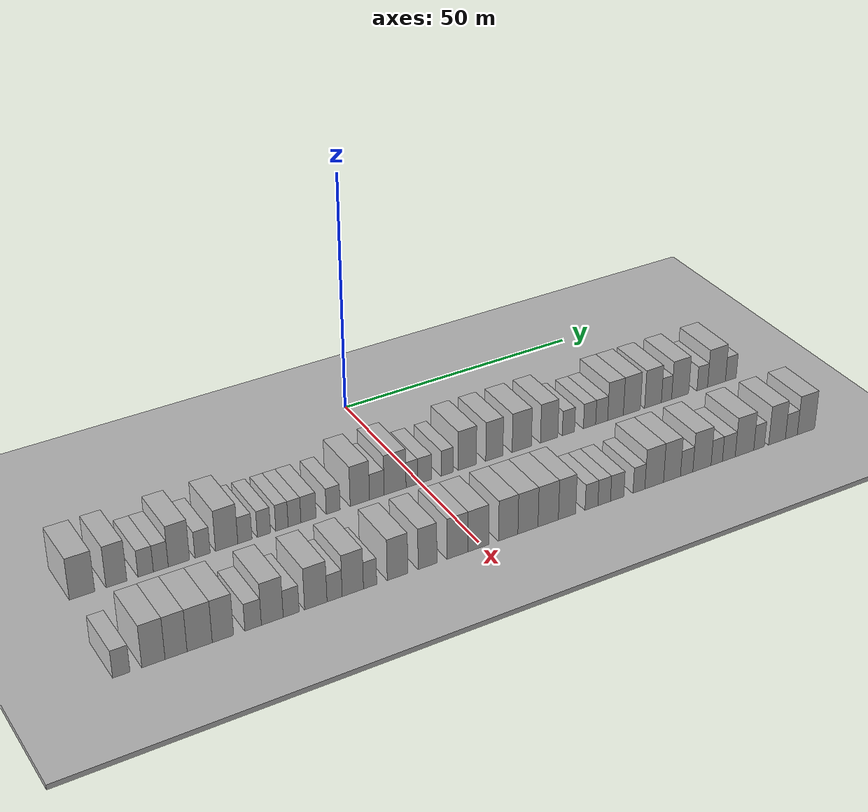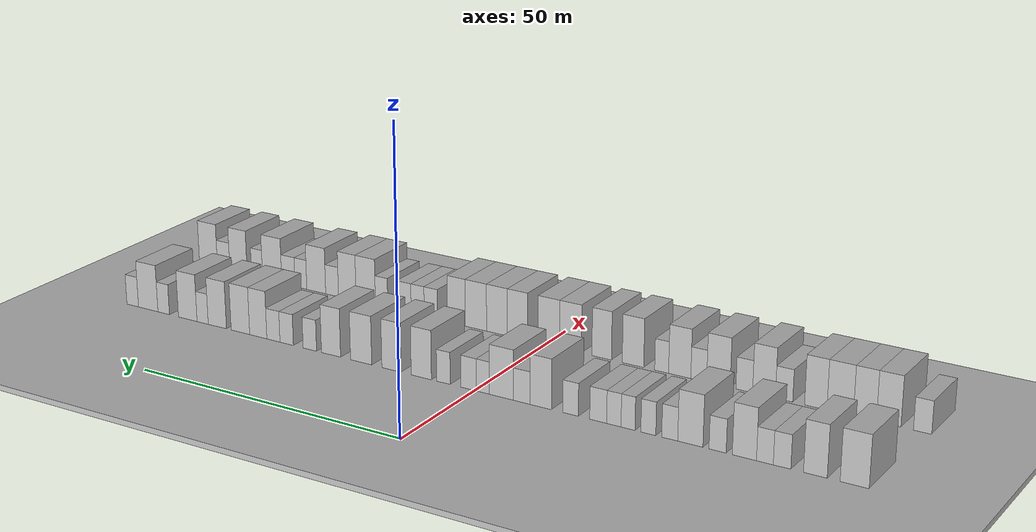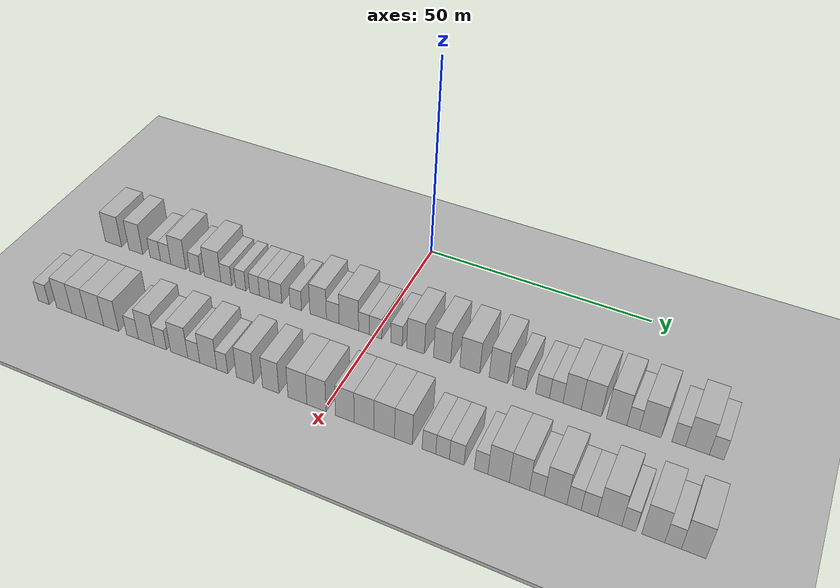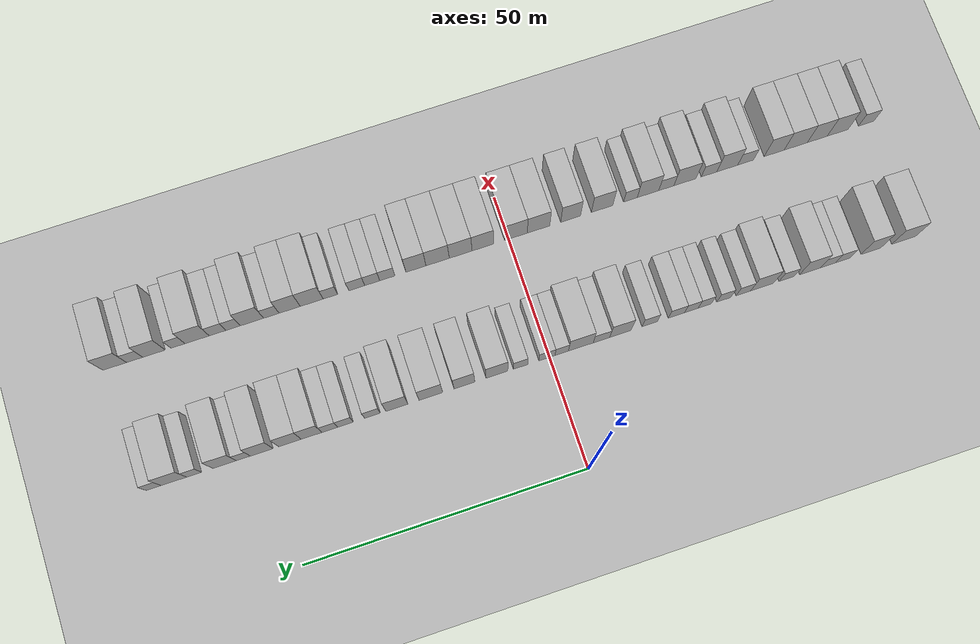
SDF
<sdf version="1.6">
 <world name="default">
  <include><name>ground_plane_1</name><uri>model://HANNAS_ground_plane</uri></include>
  <include>
   <name>ground_plane_2</name>
   <uri>model://HANNAS_ground_plane</uri>
   <pose>100 0 0  0 0 0</pose>
  </include>
  <model name="building_37">
   <static>1</static>
   <pose>25.0000 -65.0238 0 0.000000 0.000000 0.000000</pose>
   <link name="link">
    <pose>0 0 4.50 0 0 0</pose>
    <collision name="collision"><geometry><box><size>10.0000 4.4801 9.0000</size></box></geometry></collision>
    <visual name="visual">
     <cast_shadows>0</cast_shadows>
     <geometry><box><size>10.0000 4.4801 9.0000</size></box></geometry>
     <material>
      <script>
       <uri>model://HANNAS_wall/materials/scripts</uri>
       <uri>model://HANNAS_wall/materials/textures</uri>
       <name>vrc/HANNAS_wall</name>
      </script>
     </material>
    </visual>
   </link>
  </model>
  <model name="building_38">
   <static>1</static>
   <pose>25.0000 -58.9223 0 0.000000 0.000000 0.000000</pose>
   <link name="link">
    <pose>0 0 4.50 0 0 0</pose>
    <collision name="collision"><geometry><box><size>10.0000 3.7229 9.0000</size></box></geometry></collision>
    <visual name="visual">
     <cast_shadows>0</cast_shadows>
     <geometry><box><size>10.0000 3.7229 9.0000</size></box></geometry>
     <material>
      <script>
       <uri>model://HANNAS_wall/materials/scripts</uri>
       <uri>model://HANNAS_wall/materials/textures</uri>
       <name>vrc/HANNAS_wall</name>
      </script>
     </material>
    </visual>
   </link>
  </model>
  <model name="building_39">
   <static>1</static>
   <pose>25.0000 -53.6632 0 0.000000 0.000000 0.000000</pose>
   <link name="link">
    <pose>0 0 3.00 0 0 0</pose>
    <collision name="collision"><geometry><box><size>10.0000 2.7953 6.0000</size></box></geometry></collision>
    <visual name="visual">
     <cast_shadows>0</cast_shadows>
     <geometry><box><size>10.0000 2.7953 6.0000</size></box></geometry>
     <material>
      <script>
       <uri>model://HANNAS_wall/materials/scripts</uri>
       <uri>model://HANNAS_wall/materials/textures</uri>
       <name>vrc/HANNAS_wall</name>
      </script>
     </material>
    </visual>
   </link>
  </model>
  <model name="building_40">
   <static>1</static>
   <pose>25.0000 -50.9100 0 0.000000 0.000000 0.000000</pose>
   <link name="link">
    <pose>0 0 3.00 0 0 0</pose>
    <collision name="collision"><geometry><box><size>10.0000 2.7112 6.0000</size></box></geometry></collision>
    <visual name="visual">
     <cast_shadows>0</cast_shadows>
     <geometry><box><size>10.0000 2.7112 6.0000</size></box></geometry>
     <material>
      <script>
       <uri>model://HANNAS_wall/materials/scripts</uri>
       <uri>model://HANNAS_wall/materials/textures</uri>
       <name>vrc/HANNAS_wall</name>
      </script>
     </material>
    </visual>
   </link>
  </model>
  <model name="building_41">
   <static>1</static>
   <pose>25.0000 -47.5943 0 0.000000 0.000000 0.000000</pose>
   <link name="link">
    <pose>0 0 4.50 0 0 0</pose>
    <collision name="collision"><geometry><box><size>10.0000 3.9201 9.0000</size></box></geometry></collision>
    <visual name="visual">
     <cast_shadows>0</cast_shadows>
     <geometry><box><size>10.0000 3.9201 9.0000</size></box></geometry>
     <material>
      <script>
       <uri>model://HANNAS_wall/materials/scripts</uri>
       <uri>model://HANNAS_wall/materials/textures</uri>
       <name>vrc/HANNAS_wall</name>
      </script>
     </material>
    </visual>
   </link>
  </model>
  <model name="building_42">
   <static>1</static>
   <pose>25.0000 -43.2173 0 0.000000 0.000000 0.000000</pose>
   <link name="link">
    <pose>0 0 3.00 0 0 0</pose>
    <collision name="collision"><geometry><box><size>10.0000 2.8340 6.0000</size></box></geometry></collision>
    <visual name="visual">
     <cast_shadows>0</cast_shadows>
     <geometry><box><size>10.0000 2.8340 6.0000</size></box></geometry>
     <material>
      <script>
       <uri>model://HANNAS_wall/materials/scripts</uri>
       <uri>model://HANNAS_wall/materials/textures</uri>
       <name>vrc/HANNAS_wall</name>
      </script>
     </material>
    </visual>
   </link>
  </model>
  <model name="building_43">
   <static>1</static>
   <pose>25.0000 -38.6932 0 0.000000 0.000000 0.000000</pose>
   <link name="link">
    <pose>0 0 4.50 0 0 0</pose>
    <collision name="collision"><geometry><box><size>10.0000 4.2141 9.0000</size></box></geometry></collision>
    <visual name="visual">
     <cast_shadows>0</cast_shadows>
     <geometry><box><size>10.0000 4.2141 9.0000</size></box></geometry>
     <material>
      <script>
       <uri>model://HANNAS_wall/materials/scripts</uri>
       <uri>model://HANNAS_wall/materials/textures</uri>
       <name>vrc/HANNAS_wall</name>
      </script>
     </material>
    </visual>
   </link>
  </model>
  <model name="building_44">
   <static>1</static>
   <pose>25.0000 -35.2384 0 0.000000 0.000000 0.000000</pose>
   <link name="link">
    <pose>0 0 3.00 0 0 0</pose>
    <collision name="collision"><geometry><box><size>10.0000 2.6955 6.0000</size></box></geometry></collision>
    <visual name="visual">
     <cast_shadows>0</cast_shadows>
     <geometry><box><size>10.0000 2.6955 6.0000</size></box></geometry>
     <material>
      <script>
       <uri>model://HANNAS_wall/materials/scripts</uri>
       <uri>model://HANNAS_wall/materials/textures</uri>
       <name>vrc/HANNAS_wall</name>
      </script>
     </material>
    </visual>
   </link>
  </model>
  <model name="building_45">
   <static>1</static>
   <pose>25.0000 -31.6136 0 0.000000 0.000000 0.000000</pose>
   <link name="link">
    <pose>0 0 3.00 0 0 0</pose>
    <collision name="collision"><geometry><box><size>10.0000 2.5543 6.0000</size></box></geometry></collision>
    <visual name="visual">
     <cast_shadows>0</cast_shadows>
     <geometry><box><size>10.0000 2.5543 6.0000</size></box></geometry>
     <material>
      <script>
       <uri>model://HANNAS_wall/materials/scripts</uri>
       <uri>model://HANNAS_wall/materials/textures</uri>
       <name>vrc/HANNAS_wall</name>
      </script>
     </material>
    </visual>
   </link>
  </model>
  <model name="building_46">
   <static>1</static>
   <pose>25.0000 -28.1310 0 0.000000 0.000000 0.000000</pose>
   <link name="link">
    <pose>0 0 3.00 0 0 0</pose>
    <collision name="collision"><geometry><box><size>10.0000 2.4108 6.0000</size></box></geometry></collision>
    <visual name="visual">
     <cast_shadows>0</cast_shadows>
     <geometry><box><size>10.0000 2.4108 6.0000</size></box></geometry>
     <material>
      <script>
       <uri>model://HANNAS_wall/materials/scripts</uri>
       <uri>model://HANNAS_wall/materials/textures</uri>
       <name>vrc/HANNAS_wall</name>
      </script>
     </material>
    </visual>
   </link>
  </model>
  <model name="building_47">
   <static>1</static>
   <pose>25.0000 -25.6795 0 0.000000 0.000000 0.000000</pose>
   <link name="link">
    <pose>0 0 3.00 0 0 0</pose>
    <collision name="collision"><geometry><box><size>10.0000 2.4922 6.0000</size></box></geometry></collision>
    <visual name="visual">
     <cast_shadows>0</cast_shadows>
     <geometry><box><size>10.0000 2.4922 6.0000</size></box></geometry>
     <material>
      <script>
       <uri>model://HANNAS_wall/materials/scripts</uri>
       <uri>model://HANNAS_wall/materials/textures</uri>
       <name>vrc/HANNAS_wall</name>
      </script>
     </material>
    </visual>
   </link>
  </model>
  <model name="building_48">
   <static>1</static>
   <pose>25.0000 -22.9481 0 0.000000 0.000000 0.000000</pose>
   <link name="link">
    <pose>0 0 3.00 0 0 0</pose>
    <collision name="collision"><geometry><box><size>10.0000 2.9707 6.0000</size></box></geometry></collision>
    <visual name="visual">
     <cast_shadows>0</cast_shadows>
     <geometry><box><size>10.0000 2.9707 6.0000</size></box></geometry>
     <material>
      <script>
       <uri>model://HANNAS_wall/materials/scripts</uri>
       <uri>model://HANNAS_wall/materials/textures</uri>
       <name>vrc/HANNAS_wall</name>
      </script>
     </material>
    </visual>
   </link>
  </model>
  <model name="building_49">
   <static>1</static>
   <pose>25.0000 -18.0751 0 0.000000 0.000000 0.000000</pose>
   <link name="link">
    <pose>0 0 3.00 0 0 0</pose>
    <collision name="collision"><geometry><box><size>10.0000 2.7752 6.0000</size></box></geometry></collision>
    <visual name="visual">
     <cast_shadows>0</cast_shadows>
     <geometry><box><size>10.0000 2.7752 6.0000</size></box></geometry>
     <material>
      <script>
       <uri>model://HANNAS_wall/materials/scripts</uri>
       <uri>model://HANNAS_wall/materials/textures</uri>
       <name>vrc/HANNAS_wall</name>
      </script>
     </material>
    </visual>
   </link>
  </model>
  <model name="building_50">
   <static>1</static>
   <pose>25.0000 -12.7385 0 0.000000 0.000000 0.000000</pose>
   <link name="link">
    <pose>0 0 4.50 0 0 0</pose>
    <collision name="collision"><geometry><box><size>10.0000 3.8981 9.0000</size></box></geometry></collision>
    <visual name="visual">
     <cast_shadows>0</cast_shadows>
     <geometry><box><size>10.0000 3.8981 9.0000</size></box></geometry>
     <material>
      <script>
       <uri>model://HANNAS_wall/materials/scripts</uri>
       <uri>model://HANNAS_wall/materials/textures</uri>
       <name>vrc/HANNAS_wall</name>
      </script>
     </material>
    </visual>
   </link>
  </model>
  <model name="building_51">
   <static>1</static>
   <pose>25.0000 -9.3016 0 0.000000 0.000000 0.000000</pose>
   <link name="link">
    <pose>0 0 3.00 0 0 0</pose>
    <collision name="collision"><geometry><box><size>10.0000 2.9758 6.0000</size></box></geometry></collision>
    <visual name="visual">
     <cast_shadows>0</cast_shadows>
     <geometry><box><size>10.0000 2.9758 6.0000</size></box></geometry>
     <material>
      <script>
       <uri>model://HANNAS_wall/materials/scripts</uri>
       <uri>model://HANNAS_wall/materials/textures</uri>
       <name>vrc/HANNAS_wall</name>
      </script>
     </material>
    </visual>
   </link>
  </model>
  <model name="building_52">
   <static>1</static>
   <pose>25.0000 -5.5700 0 0.000000 0.000000 0.000000</pose>
   <link name="link">
    <pose>0 0 4.50 0 0 0</pose>
    <collision name="collision"><geometry><box><size>10.0000 4.4874 9.0000</size></box></geometry></collision>
    <visual name="visual">
     <cast_shadows>0</cast_shadows>
     <geometry><box><size>10.0000 4.4874 9.0000</size></box></geometry>
     <material>
      <script>
       <uri>model://HANNAS_wall/materials/scripts</uri>
       <uri>model://HANNAS_wall/materials/textures</uri>
       <name>vrc/HANNAS_wall</name>
      </script>
     </material>
    </visual>
   </link>
  </model>
  <model name="building_53">
   <static>1</static>
   <pose>25.0000 -2.1167 0 0.000000 0.000000 0.000000</pose>
   <link name="link">
    <pose>0 0 3.00 0 0 0</pose>
    <collision name="collision"><geometry><box><size>10.0000 2.4191 6.0000</size></box></geometry></collision>
    <visual name="visual">
     <cast_shadows>0</cast_shadows>
     <geometry><box><size>10.0000 2.4191 6.0000</size></box></geometry>
     <material>
      <script>
       <uri>model://HANNAS_wall/materials/scripts</uri>
       <uri>model://HANNAS_wall/materials/textures</uri>
       <name>vrc/HANNAS_wall</name>
      </script>
     </material>
    </visual>
   </link>
  </model>
  <model name="building_54">
   <static>1</static>
   <pose>25.0000 0.5405 0 0.000000 0.000000 0.000000</pose>
   <link name="link">
    <pose>0 0 3.00 0 0 0</pose>
    <collision name="collision"><geometry><box><size>10.0000 2.8954 6.0000</size></box></geometry></collision>
    <visual name="visual">
     <cast_shadows>0</cast_shadows>
     <geometry><box><size>10.0000 2.8954 6.0000</size></box></geometry>
     <material>
      <script>
       <uri>model://HANNAS_wall/materials/scripts</uri>
       <uri>model://HANNAS_wall/materials/textures</uri>
       <name>vrc/HANNAS_wall</name>
      </script>
     </material>
    </visual>
   </link>
  </model>
  <model name="building_55">
   <static>1</static>
   <pose>25.0000 5.2751 0 0.000000 0.000000 0.000000</pose>
   <link name="link">
    <pose>0 0 3.00 0 0 0</pose>
    <collision name="collision"><geometry><box><size>10.0000 2.5737 6.0000</size></box></geometry></collision>
    <visual name="visual">
     <cast_shadows>0</cast_shadows>
     <geometry><box><size>10.0000 2.5737 6.0000</size></box></geometry>
     <material>
      <script>
       <uri>model://HANNAS_wall/materials/scripts</uri>
       <uri>model://HANNAS_wall/materials/textures</uri>
       <name>vrc/HANNAS_wall</name>
      </script>
     </material>
    </visual>
   </link>
  </model>
  <model name="building_56">
   <static>1</static>
   <pose>25.0000 9.5087 0 0.000000 0.000000 0.000000</pose>
   <link name="link">
    <pose>0 0 4.50 0 0 0</pose>
    <collision name="collision"><geometry><box><size>10.0000 3.8934 9.0000</size></box></geometry></collision>
    <visual name="visual">
     <cast_shadows>0</cast_shadows>
     <geometry><box><size>10.0000 3.8934 9.0000</size></box></geometry>
     <material>
      <script>
       <uri>model://HANNAS_wall/materials/scripts</uri>
       <uri>model://HANNAS_wall/materials/textures</uri>
       <name>vrc/HANNAS_wall</name>
      </script>
     </material>
    </visual>
   </link>
  </model>
  <model name="building_57">
   <static>1</static>
   <pose>25.0000 15.3121 0 0.000000 0.000000 0.000000</pose>
   <link name="link">
    <pose>0 0 4.50 0 0 0</pose>
    <collision name="collision"><geometry><box><size>10.0000 3.7135 9.0000</size></box></geometry></collision>
    <visual name="visual">
     <cast_shadows>0</cast_shadows>
     <geometry><box><size>10.0000 3.7135 9.0000</size></box></geometry>
     <material>
      <script>
       <uri>model://HANNAS_wall/materials/scripts</uri>
       <uri>model://HANNAS_wall/materials/textures</uri>
       <name>vrc/HANNAS_wall</name>
      </script>
     </material>
    </visual>
   </link>
  </model>
  <model name="building_58">
   <static>1</static>
   <pose>25.0000 21.2771 0 0.000000 0.000000 0.000000</pose>
   <link name="link">
    <pose>0 0 4.50 0 0 0</pose>
    <collision name="collision"><geometry><box><size>10.0000 4.2165 9.0000</size></box></geometry></collision>
    <visual name="visual">
     <cast_shadows>0</cast_shadows>
     <geometry><box><size>10.0000 4.2165 9.0000</size></box></geometry>
     <material>
      <script>
       <uri>model://HANNAS_wall/materials/scripts</uri>
       <uri>model://HANNAS_wall/materials/textures</uri>
       <name>vrc/HANNAS_wall</name>
      </script>
     </material>
    </visual>
   </link>
  </model>
  <model name="building_59">
   <static>1</static>
   <pose>25.0000 27.3191 0 0.000000 0.000000 0.000000</pose>
   <link name="link">
    <pose>0 0 4.50 0 0 0</pose>
    <collision name="collision"><geometry><box><size>10.0000 3.8674 9.0000</size></box></geometry></collision>
    <visual name="visual">
     <cast_shadows>0</cast_shadows>
     <geometry><box><size>10.0000 3.8674 9.0000</size></box></geometry>
     <material>
      <script>
       <uri>model://HANNAS_wall/materials/scripts</uri>
       <uri>model://HANNAS_wall/materials/textures</uri>
       <name>vrc/HANNAS_wall</name>
      </script>
     </material>
    </visual>
   </link>
  </model>
  <model name="building_60">
   <static>1</static>
   <pose>25.0000 31.6328 0 0.000000 0.000000 0.000000</pose>
   <link name="link">
    <pose>0 0 3.00 0 0 0</pose>
    <collision name="collision"><geometry><box><size>10.0000 2.7600 6.0000</size></box></geometry></collision>
    <visual name="visual">
     <cast_shadows>0</cast_shadows>
     <geometry><box><size>10.0000 2.7600 6.0000</size></box></geometry>
     <material>
      <script>
       <uri>model://HANNAS_wall/materials/scripts</uri>
       <uri>model://HANNAS_wall/materials/textures</uri>
       <name>vrc/HANNAS_wall</name>
      </script>
     </material>
    </visual>
   </link>
  </model>
  <model name="building_61">
   <static>1</static>
   <pose>25.0000 36.4050 0 0.000000 0.000000 0.000000</pose>
   <link name="link">
    <pose>0 0 3.00 0 0 0</pose>
    <collision name="collision"><geometry><box><size>10.0000 2.7844 6.0000</size></box></geometry></collision>
    <visual name="visual">
     <cast_shadows>0</cast_shadows>
     <geometry><box><size>10.0000 2.7844 6.0000</size></box></geometry>
     <material>
      <script>
       <uri>model://HANNAS_wall/materials/scripts</uri>
       <uri>model://HANNAS_wall/materials/textures</uri>
       <name>vrc/HANNAS_wall</name>
      </script>
     </material>
    </visual>
   </link>
  </model>
  <model name="building_62">
   <static>1</static>
   <pose>25.0000 39.1672 0 0.000000 0.000000 0.000000</pose>
   <link name="link">
    <pose>0 0 3.00 0 0 0</pose>
    <collision name="collision"><geometry><box><size>10.0000 2.7401 6.0000</size></box></geometry></collision>
    <visual name="visual">
     <cast_shadows>0</cast_shadows>
     <geometry><box><size>10.0000 2.7401 6.0000</size></box></geometry>
     <material>
      <script>
       <uri>model://HANNAS_wall/materials/scripts</uri>
       <uri>model://HANNAS_wall/materials/textures</uri>
       <name>vrc/HANNAS_wall</name>
      </script>
     </material>
    </visual>
   </link>
  </model>
  <model name="building_63">
   <static>1</static>
   <pose>25.0000 42.3514 0 0.000000 0.000000 0.000000</pose>
   <link name="link">
    <pose>0 0 4.50 0 0 0</pose>
    <collision name="collision"><geometry><box><size>10.0000 3.6283 9.0000</size></box></geometry></collision>
    <visual name="visual">
     <cast_shadows>0</cast_shadows>
     <geometry><box><size>10.0000 3.6283 9.0000</size></box></geometry>
     <material>
      <script>
       <uri>model://HANNAS_wall/materials/scripts</uri>
       <uri>model://HANNAS_wall/materials/textures</uri>
       <name>vrc/HANNAS_wall</name>
      </script>
     </material>
    </visual>
   </link>
  </model>
  <model name="building_64">
   <static>1</static>
   <pose>25.0000 46.1379 0 0.000000 0.000000 0.000000</pose>
   <link name="link">
    <pose>0 0 4.50 0 0 0</pose>
    <collision name="collision"><geometry><box><size>10.0000 3.9446 9.0000</size></box></geometry></collision>
    <visual name="visual">
     <cast_shadows>0</cast_shadows>
     <geometry><box><size>10.0000 3.9446 9.0000</size></box></geometry>
     <material>
      <script>
       <uri>model://HANNAS_wall/materials/scripts</uri>
       <uri>model://HANNAS_wall/materials/textures</uri>
       <name>vrc/HANNAS_wall</name>
      </script>
     </material>
    </visual>
   </link>
  </model>
  <model name="building_65">
   <static>1</static>
   <pose>25.0000 51.0829 0 0.000000 0.000000 0.000000</pose>
   <link name="link">
    <pose>0 0 4.50 0 0 0</pose>
    <collision name="collision"><geometry><box><size>10.0000 3.9455 9.0000</size></box></geometry></collision>
    <visual name="visual">
     <cast_shadows>0</cast_shadows>
     <geometry><box><size>10.0000 3.9455 9.0000</size></box></geometry>
     <material>
      <script>
       <uri>model://HANNAS_wall/materials/scripts</uri>
       <uri>model://HANNAS_wall/materials/textures</uri>
       <name>vrc/HANNAS_wall</name>
      </script>
     </material>
    </visual>
   </link>
  </model>
  <model name="building_66">
   <static>1</static>
   <pose>25.0000 54.2713 0 0.000000 0.000000 0.000000</pose>
   <link name="link">
    <pose>0 0 3.00 0 0 0</pose>
    <collision name="collision"><geometry><box><size>10.0000 2.4313 6.0000</size></box></geometry></collision>
    <visual name="visual">
     <cast_shadows>0</cast_shadows>
     <geometry><box><size>10.0000 2.4313 6.0000</size></box></geometry>
     <material>
      <script>
       <uri>model://HANNAS_wall/materials/scripts</uri>
       <uri>model://HANNAS_wall/materials/textures</uri>
       <name>vrc/HANNAS_wall</name>
      </script>
     </material>
    </visual>
   </link>
  </model>
  <model name="building_67">
   <static>1</static>
   <pose>25.0000 57.5253 0 0.000000 0.000000 0.000000</pose>
   <link name="link">
    <pose>0 0 4.50 0 0 0</pose>
    <collision name="collision"><geometry><box><size>10.0000 4.0767 9.0000</size></box></geometry></collision>
    <visual name="visual">
     <cast_shadows>0</cast_shadows>
     <geometry><box><size>10.0000 4.0767 9.0000</size></box></geometry>
     <material>
      <script>
       <uri>model://HANNAS_wall/materials/scripts</uri>
       <uri>model://HANNAS_wall/materials/textures</uri>
       <name>vrc/HANNAS_wall</name>
      </script>
     </material>
    </visual>
   </link>
  </model>
  <model name="building_68">
   <static>1</static>
   <pose>25.0000 62.8435 0 0.000000 0.000000 0.000000</pose>
   <link name="link">
    <pose>0 0 3.00 0 0 0</pose>
    <collision name="collision"><geometry><box><size>10.0000 2.5597 6.0000</size></box></geometry></collision>
    <visual name="visual">
     <cast_shadows>0</cast_shadows>
     <geometry><box><size>10.0000 2.5597 6.0000</size></box></geometry>
     <material>
      <script>
       <uri>model://HANNAS_wall/materials/scripts</uri>
       <uri>model://HANNAS_wall/materials/textures</uri>
       <name>vrc/HANNAS_wall</name>
      </script>
     </material>
    </visual>
   </link>
  </model>
  <model name="building_69">
   <static>1</static>
   <pose>25.0000 66.3068 0 0.000000 0.000000 0.000000</pose>
   <link name="link">
    <pose>0 0 4.50 0 0 0</pose>
    <collision name="collision"><geometry><box><size>10.0000 4.3670 9.0000</size></box></geometry></collision>
    <visual name="visual">
     <cast_shadows>0</cast_shadows>
     <geometry><box><size>10.0000 4.3670 9.0000</size></box></geometry>
     <material>
      <script>
       <uri>model://HANNAS_wall/materials/scripts</uri>
       <uri>model://HANNAS_wall/materials/textures</uri>
       <name>vrc/HANNAS_wall</name>
      </script>
     </material>
    </visual>
   </link>
  </model>
  <model name="building_70">
   <static>1</static>
   <pose>25.0000 69.8033 0 0.000000 0.000000 0.000000</pose>
   <link name="link">
    <pose>0 0 3.00 0 0 0</pose>
    <collision name="collision"><geometry><box><size>10.0000 2.6260 6.0000</size></box></geometry></collision>
    <visual name="visual">
     <cast_shadows>0</cast_shadows>
     <geometry><box><size>10.0000 2.6260 6.0000</size></box></geometry>
     <material>
      <script>
       <uri>model://HANNAS_wall/materials/scripts</uri>
       <uri>model://HANNAS_wall/materials/textures</uri>
       <name>vrc/HANNAS_wall</name>
      </script>
     </material>
    </visual>
   </link>
  </model>
  <model name="building_139">
   <static>1</static>
   <pose>47.0000 -66.8503 0 0.000000 0.000000 0.000000</pose>
   <link name="link">
    <pose>0 0 3.00 0 0 0</pose>
    <collision name="collision"><geometry><box><size>10.0000 2.9230 6.0000</size></box></geometry></collision>
    <visual name="visual">
     <cast_shadows>0</cast_shadows>
     <geometry><box><size>10.0000 2.9230 6.0000</size></box></geometry>
     <material>
      <script>
       <uri>model://HANNAS_wall/materials/scripts</uri>
       <uri>model://HANNAS_wall/materials/textures</uri>
       <name>vrc/HANNAS_wall</name>
      </script>
     </material>
    </visual>
   </link>
  </model>
  <model name="building_140">
   <static>1</static>
   <pose>47.0000 -61.4051 0 0.000000 0.000000 0.000000</pose>
   <link name="link">
    <pose>0 0 4.50 0 0 0</pose>
    <collision name="collision"><geometry><box><size>10.0000 3.9674 9.0000</size></box></geometry></collision>
    <visual name="visual">
     <cast_shadows>0</cast_shadows>
     <geometry><box><size>10.0000 3.9674 9.0000</size></box></geometry>
     <material>
      <script>
       <uri>model://HANNAS_wall/materials/scripts</uri>
       <uri>model://HANNAS_wall/materials/textures</uri>
       <name>vrc/HANNAS_wall</name>
      </script>
     </material>
    </visual>
   </link>
  </model>
  <model name="building_141">
   <static>1</static>
   <pose>47.0000 -57.5249 0 0.000000 0.000000 0.000000</pose>
   <link name="link">
    <pose>0 0 4.50 0 0 0</pose>
    <collision name="collision"><geometry><box><size>10.0000 3.7930 9.0000</size></box></geometry></collision>
    <visual name="visual">
     <cast_shadows>0</cast_shadows>
     <geometry><box><size>10.0000 3.7930 9.0000</size></box></geometry>
     <material>
      <script>
       <uri>model://HANNAS_wall/materials/scripts</uri>
       <uri>model://HANNAS_wall/materials/textures</uri>
       <name>vrc/HANNAS_wall</name>
      </script>
     </material>
    </visual>
   </link>
  </model>
  <model name="building_142">
   <static>1</static>
   <pose>47.0000 -53.4305 0 0.000000 0.000000 0.000000</pose>
   <link name="link">
    <pose>0 0 4.50 0 0 0</pose>
    <collision name="collision"><geometry><box><size>10.0000 4.3957 9.0000</size></box></geometry></collision>
    <visual name="visual">
     <cast_shadows>0</cast_shadows>
     <geometry><box><size>10.0000 4.3957 9.0000</size></box></geometry>
     <material>
      <script>
       <uri>model://HANNAS_wall/materials/scripts</uri>
       <uri>model://HANNAS_wall/materials/textures</uri>
       <name>vrc/HANNAS_wall</name>
      </script>
     </material>
    </visual>
   </link>
  </model>
  <model name="building_143">
   <static>1</static>
   <pose>47.0000 -49.3524 0 0.000000 0.000000 0.000000</pose>
   <link name="link">
    <pose>0 0 4.50 0 0 0</pose>
    <collision name="collision"><geometry><box><size>10.0000 3.7604 9.0000</size></box></geometry></collision>
    <visual name="visual">
     <cast_shadows>0</cast_shadows>
     <geometry><box><size>10.0000 3.7604 9.0000</size></box></geometry>
     <material>
      <script>
       <uri>model://HANNAS_wall/materials/scripts</uri>
       <uri>model://HANNAS_wall/materials/textures</uri>
       <name>vrc/HANNAS_wall</name>
      </script>
     </material>
    </visual>
   </link>
  </model>
  <model name="building_144">
   <static>1</static>
   <pose>47.0000 -43.9926 0 0.000000 0.000000 0.000000</pose>
   <link name="link">
    <pose>0 0 3.00 0 0 0</pose>
    <collision name="collision"><geometry><box><size>10.0000 2.9592 6.0000</size></box></geometry></collision>
    <visual name="visual">
     <cast_shadows>0</cast_shadows>
     <geometry><box><size>10.0000 2.9592 6.0000</size></box></geometry>
     <material>
      <script>
       <uri>model://HANNAS_wall/materials/scripts</uri>
       <uri>model://HANNAS_wall/materials/textures</uri>
       <name>vrc/HANNAS_wall</name>
      </script>
     </material>
    </visual>
   </link>
  </model>
  <model name="building_145">
   <static>1</static>
   <pose>47.0000 -40.5436 0 0.000000 0.000000 0.000000</pose>
   <link name="link">
    <pose>0 0 4.50 0 0 0</pose>
    <collision name="collision"><geometry><box><size>10.0000 3.9390 9.0000</size></box></geometry></collision>
    <visual name="visual">
     <cast_shadows>0</cast_shadows>
     <geometry><box><size>10.0000 3.9390 9.0000</size></box></geometry>
     <material>
      <script>
       <uri>model://HANNAS_wall/materials/scripts</uri>
       <uri>model://HANNAS_wall/materials/textures</uri>
       <name>vrc/HANNAS_wall</name>
      </script>
     </material>
    </visual>
   </link>
  </model>
  <model name="building_146">
   <static>1</static>
   <pose>47.0000 -37.1193 0 0.000000 0.000000 0.000000</pose>
   <link name="link">
    <pose>0 0 3.00 0 0 0</pose>
    <collision name="collision"><geometry><box><size>10.0000 2.9095 6.0000</size></box></geometry></collision>
    <visual name="visual">
     <cast_shadows>0</cast_shadows>
     <geometry><box><size>10.0000 2.9095 6.0000</size></box></geometry>
     <material>
      <script>
       <uri>model://HANNAS_wall/materials/scripts</uri>
       <uri>model://HANNAS_wall/materials/textures</uri>
       <name>vrc/HANNAS_wall</name>
      </script>
     </material>
    </visual>
   </link>
  </model>
  <model name="building_147">
   <static>1</static>
   <pose>47.0000 -32.5930 0 0.000000 0.000000 0.000000</pose>
   <link name="link">
    <pose>0 0 4.50 0 0 0</pose>
    <collision name="collision"><geometry><box><size>10.0000 4.1429 9.0000</size></box></geometry></collision>
    <visual name="visual">
     <cast_shadows>0</cast_shadows>
     <geometry><box><size>10.0000 4.1429 9.0000</size></box></geometry>
     <material>
      <script>
       <uri>model://HANNAS_wall/materials/scripts</uri>
       <uri>model://HANNAS_wall/materials/textures</uri>
       <name>vrc/HANNAS_wall</name>
      </script>
     </material>
    </visual>
   </link>
  </model>
  <model name="building_148">
   <static>1</static>
   <pose>47.0000 -29.1048 0 0.000000 0.000000 0.000000</pose>
   <link name="link">
    <pose>0 0 3.00 0 0 0</pose>
    <collision name="collision"><geometry><box><size>10.0000 2.8335 6.0000</size></box></geometry></collision>
    <visual name="visual">
     <cast_shadows>0</cast_shadows>
     <geometry><box><size>10.0000 2.8335 6.0000</size></box></geometry>
     <material>
      <script>
       <uri>model://HANNAS_wall/materials/scripts</uri>
       <uri>model://HANNAS_wall/materials/textures</uri>
       <name>vrc/HANNAS_wall</name>
      </script>
     </material>
    </visual>
   </link>
  </model>
  <model name="building_149">
   <static>1</static>
   <pose>47.0000 -25.6892 0 0.000000 0.000000 0.000000</pose>
   <link name="link">
    <pose>0 0 4.50 0 0 0</pose>
    <collision name="collision"><geometry><box><size>10.0000 3.9977 9.0000</size></box></geometry></collision>
    <visual name="visual">
     <cast_shadows>0</cast_shadows>
     <geometry><box><size>10.0000 3.9977 9.0000</size></box></geometry>
     <material>
      <script>
       <uri>model://HANNAS_wall/materials/scripts</uri>
       <uri>model://HANNAS_wall/materials/textures</uri>
       <name>vrc/HANNAS_wall</name>
      </script>
     </material>
    </visual>
   </link>
  </model>
  <model name="building_150">
   <static>1</static>
   <pose>47.0000 -22.4272 0 0.000000 0.000000 0.000000</pose>
   <link name="link">
    <pose>0 0 3.00 0 0 0</pose>
    <collision name="collision"><geometry><box><size>10.0000 2.5263 6.0000</size></box></geometry></collision>
    <visual name="visual">
     <cast_shadows>0</cast_shadows>
     <geometry><box><size>10.0000 2.5263 6.0000</size></box></geometry>
     <material>
      <script>
       <uri>model://HANNAS_wall/materials/scripts</uri>
       <uri>model://HANNAS_wall/materials/textures</uri>
       <name>vrc/HANNAS_wall</name>
      </script>
     </material>
    </visual>
   </link>
  </model>
  <model name="building_151">
   <static>1</static>
   <pose>47.0000 -17.1824 0 0.000000 0.000000 0.000000</pose>
   <link name="link">
    <pose>0 0 4.50 0 0 0</pose>
    <collision name="collision"><geometry><box><size>10.0000 3.9633 9.0000</size></box></geometry></collision>
    <visual name="visual">
     <cast_shadows>0</cast_shadows>
     <geometry><box><size>10.0000 3.9633 9.0000</size></box></geometry>
     <material>
      <script>
       <uri>model://HANNAS_wall/materials/scripts</uri>
       <uri>model://HANNAS_wall/materials/textures</uri>
       <name>vrc/HANNAS_wall</name>
      </script>
     </material>
    </visual>
   </link>
  </model>
  <model name="building_152">
   <static>1</static>
   <pose>47.0000 -11.3661 0 0.000000 0.000000 0.000000</pose>
   <link name="link">
    <pose>0 0 4.50 0 0 0</pose>
    <collision name="collision"><geometry><box><size>10.0000 3.6693 9.0000</size></box></geometry></collision>
    <visual name="visual">
     <cast_shadows>0</cast_shadows>
     <geometry><box><size>10.0000 3.6693 9.0000</size></box></geometry>
     <material>
      <script>
       <uri>model://HANNAS_wall/materials/scripts</uri>
       <uri>model://HANNAS_wall/materials/textures</uri>
       <name>vrc/HANNAS_wall</name>
      </script>
     </material>
    </visual>
   </link>
  </model>
  <model name="building_153">
   <static>1</static>
   <pose>47.0000 -5.4560 0 0.000000 0.000000 0.000000</pose>
   <link name="link">
    <pose>0 0 4.50 0 0 0</pose>
    <collision name="collision"><geometry><box><size>10.0000 4.1510 9.0000</size></box></geometry></collision>
    <visual name="visual">
     <cast_shadows>0</cast_shadows>
     <geometry><box><size>10.0000 4.1510 9.0000</size></box></geometry>
     <material>
      <script>
       <uri>model://HANNAS_wall/materials/scripts</uri>
       <uri>model://HANNAS_wall/materials/textures</uri>
       <name>vrc/HANNAS_wall</name>
      </script>
     </material>
    </visual>
   </link>
  </model>
  <model name="building_154">
   <static>1</static>
   <pose>47.0000 -1.3012 0 0.000000 0.000000 0.000000</pose>
   <link name="link">
    <pose>0 0 4.50 0 0 0</pose>
    <collision name="collision"><geometry><box><size>10.0000 4.1586 9.0000</size></box></geometry></collision>
    <visual name="visual">
     <cast_shadows>0</cast_shadows>
     <geometry><box><size>10.0000 4.1586 9.0000</size></box></geometry>
     <material>
      <script>
       <uri>model://HANNAS_wall/materials/scripts</uri>
       <uri>model://HANNAS_wall/materials/textures</uri>
       <name>vrc/HANNAS_wall</name>
      </script>
     </material>
    </visual>
   </link>
  </model>
  <model name="building_155">
   <static>1</static>
   <pose>47.0000 4.7556 0 0.000000 0.000000 0.000000</pose>
   <link name="link">
    <pose>0 0 4.50 0 0 0</pose>
    <collision name="collision"><geometry><box><size>10.0000 3.9550 9.0000</size></box></geometry></collision>
    <visual name="visual">
     <cast_shadows>0</cast_shadows>
     <geometry><box><size>10.0000 3.9550 9.0000</size></box></geometry>
     <material>
      <script>
       <uri>model://HANNAS_wall/materials/scripts</uri>
       <uri>model://HANNAS_wall/materials/textures</uri>
       <name>vrc/HANNAS_wall</name>
      </script>
     </material>
    </visual>
   </link>
  </model>
  <model name="building_156">
   <static>1</static>
   <pose>47.0000 8.8017 0 0.000000 0.000000 0.000000</pose>
   <link name="link">
    <pose>0 0 4.50 0 0 0</pose>
    <collision name="collision"><geometry><box><size>10.0000 4.1373 9.0000</size></box></geometry></collision>
    <visual name="visual">
     <cast_shadows>0</cast_shadows>
     <geometry><box><size>10.0000 4.1373 9.0000</size></box></geometry>
     <material>
      <script>
       <uri>model://HANNAS_wall/materials/scripts</uri>
       <uri>model://HANNAS_wall/materials/textures</uri>
       <name>vrc/HANNAS_wall</name>
      </script>
     </material>
    </visual>
   </link>
  </model>
  <model name="building_157">
   <static>1</static>
   <pose>47.0000 12.9937 0 0.000000 0.000000 0.000000</pose>
   <link name="link">
    <pose>0 0 4.50 0 0 0</pose>
    <collision name="collision"><geometry><box><size>10.0000 4.2466 9.0000</size></box></geometry></collision>
    <visual name="visual">
     <cast_shadows>0</cast_shadows>
     <geometry><box><size>10.0000 4.2466 9.0000</size></box></geometry>
     <material>
      <script>
       <uri>model://HANNAS_wall/materials/scripts</uri>
       <uri>model://HANNAS_wall/materials/textures</uri>
       <name>vrc/HANNAS_wall</name>
      </script>
     </material>
    </visual>
   </link>
  </model>
  <model name="building_158">
   <static>1</static>
   <pose>47.0000 16.9335 0 0.000000 0.000000 0.000000</pose>
   <link name="link">
    <pose>0 0 4.50 0 0 0</pose>
    <collision name="collision"><geometry><box><size>10.0000 3.6330 9.0000</size></box></geometry></collision>
    <visual name="visual">
     <cast_shadows>0</cast_shadows>
     <geometry><box><size>10.0000 3.6330 9.0000</size></box></geometry>
     <material>
      <script>
       <uri>model://HANNAS_wall/materials/scripts</uri>
       <uri>model://HANNAS_wall/materials/textures</uri>
       <name>vrc/HANNAS_wall</name>
      </script>
     </material>
    </visual>
   </link>
  </model>
  <model name="building_159">
   <static>1</static>
   <pose>47.0000 22.1198 0 0.000000 0.000000 0.000000</pose>
   <link name="link">
    <pose>0 0 3.00 0 0 0</pose>
    <collision name="collision"><geometry><box><size>10.0000 2.7396 6.0000</size></box></geometry></collision>
    <visual name="visual">
     <cast_shadows>0</cast_shadows>
     <geometry><box><size>10.0000 2.7396 6.0000</size></box></geometry>
     <material>
      <script>
       <uri>model://HANNAS_wall/materials/scripts</uri>
       <uri>model://HANNAS_wall/materials/textures</uri>
       <name>vrc/HANNAS_wall</name>
      </script>
     </material>
    </visual>
   </link>
  </model>
  <model name="building_160">
   <static>1</static>
   <pose>47.0000 24.8403 0 0.000000 0.000000 0.000000</pose>
   <link name="link">
    <pose>0 0 3.00 0 0 0</pose>
    <collision name="collision"><geometry><box><size>10.0000 2.7014 6.0000</size></box></geometry></collision>
    <visual name="visual">
     <cast_shadows>0</cast_shadows>
     <geometry><box><size>10.0000 2.7014 6.0000</size></box></geometry>
     <material>
      <script>
       <uri>model://HANNAS_wall/materials/scripts</uri>
       <uri>model://HANNAS_wall/materials/textures</uri>
       <name>vrc/HANNAS_wall</name>
      </script>
     </material>
    </visual>
   </link>
  </model>
  <model name="building_161">
   <static>1</static>
   <pose>47.0000 27.6323 0 0.000000 0.000000 0.000000</pose>
   <link name="link">
    <pose>0 0 3.00 0 0 0</pose>
    <collision name="collision"><geometry><box><size>10.0000 2.8826 6.0000</size></box></geometry></collision>
    <visual name="visual">
     <cast_shadows>0</cast_shadows>
     <geometry><box><size>10.0000 2.8826 6.0000</size></box></geometry>
     <material>
      <script>
       <uri>model://HANNAS_wall/materials/scripts</uri>
       <uri>model://HANNAS_wall/materials/textures</uri>
       <name>vrc/HANNAS_wall</name>
      </script>
     </material>
    </visual>
   </link>
  </model>
  <model name="building_162">
   <static>1</static>
   <pose>47.0000 32.3753 0 0.000000 0.000000 0.000000</pose>
   <link name="link">
    <pose>0 0 3.00 0 0 0</pose>
    <collision name="collision"><geometry><box><size>10.0000 2.6034 6.0000</size></box></geometry></collision>
    <visual name="visual">
     <cast_shadows>0</cast_shadows>
     <geometry><box><size>10.0000 2.6034 6.0000</size></box></geometry>
     <material>
      <script>
       <uri>model://HANNAS_wall/materials/scripts</uri>
       <uri>model://HANNAS_wall/materials/textures</uri>
       <name>vrc/HANNAS_wall</name>
      </script>
     </material>
    </visual>
   </link>
  </model>
  <model name="building_163">
   <static>1</static>
   <pose>47.0000 35.7351 0 0.000000 0.000000 0.000000</pose>
   <link name="link">
    <pose>0 0 4.50 0 0 0</pose>
    <collision name="collision"><geometry><box><size>10.0000 4.1162 9.0000</size></box></geometry></collision>
    <visual name="visual">
     <cast_shadows>0</cast_shadows>
     <geometry><box><size>10.0000 4.1162 9.0000</size></box></geometry>
     <material>
      <script>
       <uri>model://HANNAS_wall/materials/scripts</uri>
       <uri>model://HANNAS_wall/materials/textures</uri>
       <name>vrc/HANNAS_wall</name>
      </script>
     </material>
    </visual>
   </link>
  </model>
  <model name="building_164">
   <static>1</static>
   <pose>47.0000 39.6847 0 0.000000 0.000000 0.000000</pose>
   <link name="link">
    <pose>0 0 4.50 0 0 0</pose>
    <collision name="collision"><geometry><box><size>10.0000 3.7829 9.0000</size></box></geometry></collision>
    <visual name="visual">
     <cast_shadows>0</cast_shadows>
     <geometry><box><size>10.0000 3.7829 9.0000</size></box></geometry>
     <material>
      <script>
       <uri>model://HANNAS_wall/materials/scripts</uri>
       <uri>model://HANNAS_wall/materials/textures</uri>
       <name>vrc/HANNAS_wall</name>
      </script>
     </material>
    </visual>
   </link>
  </model>
  <model name="building_165">
   <static>1</static>
   <pose>47.0000 42.9679 0 0.000000 0.000000 0.000000</pose>
   <link name="link">
    <pose>0 0 3.00 0 0 0</pose>
    <collision name="collision"><geometry><box><size>10.0000 2.7835 6.0000</size></box></geometry></collision>
    <visual name="visual">
     <cast_shadows>0</cast_shadows>
     <geometry><box><size>10.0000 2.7835 6.0000</size></box></geometry>
     <material>
      <script>
       <uri>model://HANNAS_wall/materials/scripts</uri>
       <uri>model://HANNAS_wall/materials/textures</uri>
       <name>vrc/HANNAS_wall</name>
      </script>
     </material>
    </visual>
   </link>
  </model>
  <model name="building_166">
   <static>1</static>
   <pose>47.0000 46.4261 0 0.000000 0.000000 0.000000</pose>
   <link name="link">
    <pose>0 0 4.50 0 0 0</pose>
    <collision name="collision"><geometry><box><size>10.0000 4.1331 9.0000</size></box></geometry></collision>
    <visual name="visual">
     <cast_shadows>0</cast_shadows>
     <geometry><box><size>10.0000 4.1331 9.0000</size></box></geometry>
     <material>
      <script>
       <uri>model://HANNAS_wall/materials/scripts</uri>
       <uri>model://HANNAS_wall/materials/textures</uri>
       <name>vrc/HANNAS_wall</name>
      </script>
     </material>
    </visual>
   </link>
  </model>
  <model name="building_167">
   <static>1</static>
   <pose>47.0000 49.7883 0 0.000000 0.000000 0.000000</pose>
   <link name="link">
    <pose>0 0 3.00 0 0 0</pose>
    <collision name="collision"><geometry><box><size>10.0000 2.5912 6.0000</size></box></geometry></collision>
    <visual name="visual">
     <cast_shadows>0</cast_shadows>
     <geometry><box><size>10.0000 2.5912 6.0000</size></box></geometry>
     <material>
      <script>
       <uri>model://HANNAS_wall/materials/scripts</uri>
       <uri>model://HANNAS_wall/materials/textures</uri>
       <name>vrc/HANNAS_wall</name>
      </script>
     </material>
    </visual>
   </link>
  </model>
  <model name="building_168">
   <static>1</static>
   <pose>47.0000 52.5590 0 0.000000 0.000000 0.000000</pose>
   <link name="link">
    <pose>0 0 3.00 0 0 0</pose>
    <collision name="collision"><geometry><box><size>10.0000 2.9502 6.0000</size></box></geometry></collision>
    <visual name="visual">
     <cast_shadows>0</cast_shadows>
     <geometry><box><size>10.0000 2.9502 6.0000</size></box></geometry>
     <material>
      <script>
       <uri>model://HANNAS_wall/materials/scripts</uri>
       <uri>model://HANNAS_wall/materials/textures</uri>
       <name>vrc/HANNAS_wall</name>
      </script>
     </material>
    </visual>
   </link>
  </model>
  <model name="building_169">
   <static>1</static>
   <pose>47.0000 56.1866 0 0.000000 0.000000 0.000000</pose>
   <link name="link">
    <pose>0 0 4.50 0 0 0</pose>
    <collision name="collision"><geometry><box><size>10.0000 4.3051 9.0000</size></box></geometry></collision>
    <visual name="visual">
     <cast_shadows>0</cast_shadows>
     <geometry><box><size>10.0000 4.3051 9.0000</size></box></geometry>
     <material>
      <script>
       <uri>model://HANNAS_wall/materials/scripts</uri>
       <uri>model://HANNAS_wall/materials/textures</uri>
       <name>vrc/HANNAS_wall</name>
      </script>
     </material>
    </visual>
   </link>
  </model>
  <model name="building_170">
   <static>1</static>
   <pose>47.0000 59.5799 0 0.000000 0.000000 0.000000</pose>
   <link name="link">
    <pose>0 0 3.00 0 0 0</pose>
    <collision name="collision"><geometry><box><size>10.0000 2.4814 6.0000</size></box></geometry></collision>
    <visual name="visual">
     <cast_shadows>0</cast_shadows>
     <geometry><box><size>10.0000 2.4814 6.0000</size></box></geometry>
     <material>
      <script>
       <uri>model://HANNAS_wall/materials/scripts</uri>
       <uri>model://HANNAS_wall/materials/textures</uri>
       <name>vrc/HANNAS_wall</name>
      </script>
     </material>
    </visual>
   </link>
  </model>
  <model name="building_171">
   <static>1</static>
   <pose>47.0000 63.8076 0 0.000000 0.000000 0.000000</pose>
   <link name="link">
    <pose>0 0 4.50 0 0 0</pose>
    <collision name="collision"><geometry><box><size>10.0000 3.9742 9.0000</size></box></geometry></collision>
    <visual name="visual">
     <cast_shadows>0</cast_shadows>
     <geometry><box><size>10.0000 3.9742 9.0000</size></box></geometry>
     <material>
      <script>
       <uri>model://HANNAS_wall/materials/scripts</uri>
       <uri>model://HANNAS_wall/materials/textures</uri>
       <name>vrc/HANNAS_wall</name>
      </script>
     </material>
    </visual>
   </link>
  </model>
  <model name="building_172">
   <static>1</static>
   <pose>47.0000 67.2148 0 0.000000 0.000000 0.000000</pose>
   <link name="link">
    <pose>0 0 3.00 0 0 0</pose>
    <collision name="collision"><geometry><box><size>10.0000 2.8403 6.0000</size></box></geometry></collision>
    <visual name="visual">
     <cast_shadows>0</cast_shadows>
     <geometry><box><size>10.0000 2.8403 6.0000</size></box></geometry>
     <material>
      <script>
       <uri>model://HANNAS_wall/materials/scripts</uri>
       <uri>model://HANNAS_wall/materials/textures</uri>
       <name>vrc/HANNAS_wall</name>
      </script>
     </material>
    </visual>
   </link>
  </model>
  <model name="building_173">
   <static>1</static>
   <pose>47.0000 70.7205 0 0.000000 0.000000 0.000000</pose>
   <link name="link">
    <pose>0 0 4.50 0 0 0</pose>
    <collision name="collision"><geometry><box><size>10.0000 4.1709 9.0000</size></box></geometry></collision>
    <visual name="visual">
     <cast_shadows>0</cast_shadows>
     <geometry><box><size>10.0000 4.1709 9.0000</size></box></geometry>
     <material>
      <script>
       <uri>model://HANNAS_wall/materials/scripts</uri>
       <uri>model://HANNAS_wall/materials/textures</uri>
       <name>vrc/HANNAS_wall</name>
      </script>
     </material>
    </visual>
   </link>
  </model>
 </world>
</sdf>
